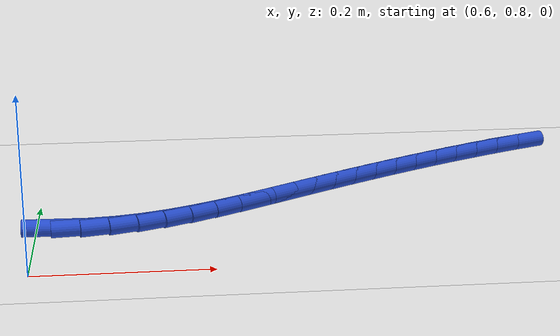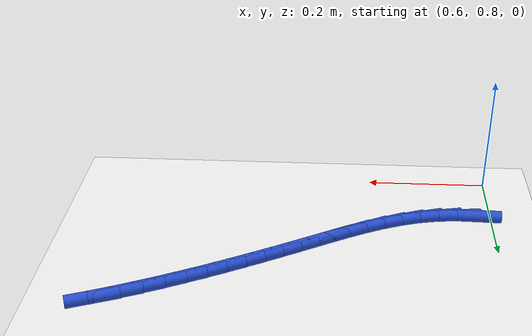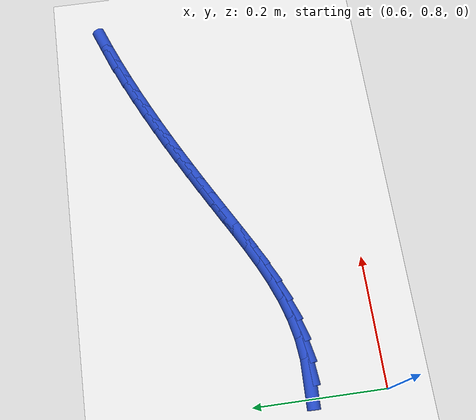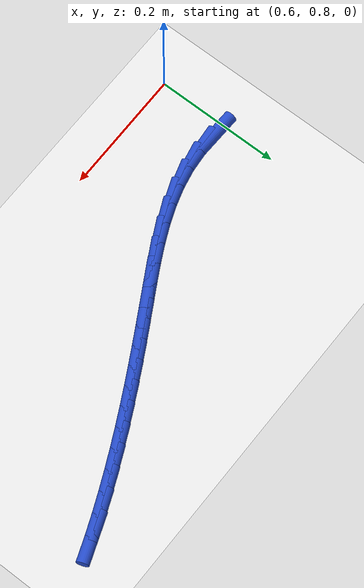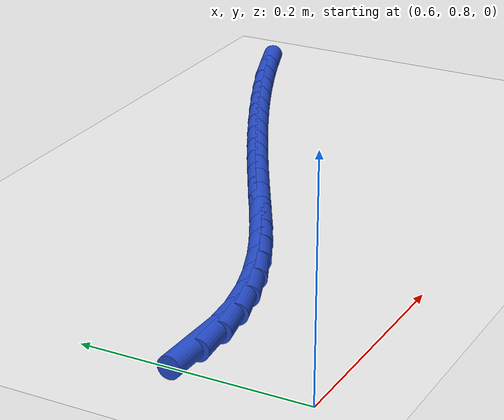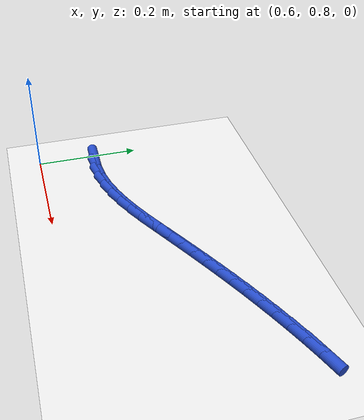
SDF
<sdf version="1.6">
 <world name="default">
  <model name="ground_plane">
   <static>1</static>
   <link name="link">
    <collision name="collision">
     <geometry><plane><normal>0 0 1</normal><size>100 100</size></plane></geometry>
     <surface><friction><ode><mu>100</mu><mu2>50</mu2></ode></friction></surface>
    </collision>
    <visual name="visual">
     <cast_shadows>0</cast_shadows>
     <geometry><plane><normal>0 0 1</normal><size>100 100</size></plane></geometry>
     <material>
      <script><uri>file://media/materials/scripts/gazebo.material</uri><name>Gazebo/WhiteGlow</name></script>
     </material>
    </visual>
   </link>
  </model>
  <model name="line">
   <link name="link_38">
    <pose>0.6246285966978147 0.911528589511543 0.01 0 1.57 -0.02734627377530669</pose>
    <collision name="collision">
     <geometry><cylinder><radius>0.01</radius><length>0.08</length></cylinder></geometry>
    </collision>
    <visual name="visual">
     <material>
      <script><name>Gazebo/Blue</name><uri>file://media/materials/scripts/gazebo.material</uri></script>
     </material>
     <geometry><cylinder><radius>0.01</radius><length>0.08</length></cylinder></geometry>
    </visual>
   </link>
   <link name="link_39">
    <pose>0.6573288925218297 0.9106341352950962 0.01 0 1.57 0.09345466645163591</pose>
    <collision name="collision">
     <geometry><cylinder><radius>0.01</radius><length>0.08</length></cylinder></geometry>
    </collision>
    <visual name="visual">
     <material>
      <script><name>Gazebo/Blue</name><uri>file://media/materials/scripts/gazebo.material</uri></script>
     </material>
     <geometry><cylinder><radius>0.01</radius><length>0.08</length></cylinder></geometry>
    </visual>
   </link>
   <link name="link_40">
    <pose>0.6891732352585526 0.9136188320103223 0.01 0 1.57 0.20142658789239246</pose>
    <collision name="collision">
     <geometry><cylinder><radius>0.01</radius><length>0.08</length></cylinder></geometry>
    </collision>
    <visual name="visual">
     <material>
      <script><name>Gazebo/Blue</name><uri>file://media/materials/scripts/gazebo.material</uri></script>
     </material>
     <geometry><cylinder><radius>0.01</radius><length>0.08</length></cylinder></geometry>
    </visual>
   </link>
   <link name="link_41">
    <pose>0.7202327587477545 0.9199610523577911 0.01 0 1.57 0.2937035245050092</pose>
    <collision name="collision">
     <geometry><cylinder><radius>0.01</radius><length>0.08</length></cylinder></geometry>
    </collision>
    <visual name="visual">
     <material>
      <script><name>Gazebo/Blue</name><uri>file://media/materials/scripts/gazebo.material</uri></script>
     </material>
     <geometry><cylinder><radius>0.01</radius><length>0.08</length></cylinder></geometry>
    </visual>
   </link>
   <link name="link_42">
    <pose>0.7505785968292057 0.9291391690380713 0.01 0 1.57 0.36916790789140325</pose>
    <collision name="collision">
     <geometry><cylinder><radius>0.01</radius><length>0.08</length></cylinder></geometry>
    </collision>
    <visual name="visual">
     <material>
      <script><name>Gazebo/Blue</name><uri>file://media/materials/scripts/gazebo.material</uri></script>
     </material>
     <geometry><cylinder><radius>0.01</radius><length>0.08</length></cylinder></geometry>
    </visual>
   </link>
   <link name="link_43">
    <pose>0.780281883342677 0.9406315547517325 0.01 0 1.57 0.42785775329782727</pose>
    <collision name="collision">
     <geometry><cylinder><radius>0.01</radius><length>0.08</length></cylinder></geometry>
    </collision>
    <visual name="visual">
     <material>
      <script><name>Gazebo/Blue</name><uri>file://media/materials/scripts/gazebo.material</uri></script>
     </material>
     <geometry><cylinder><radius>0.01</radius><length>0.08</length></cylinder></geometry>
    </visual>
   </link>
   <link name="link_44">
    <pose>0.809413752127939 0.9539165821993436 0.01 0 1.57 0.47033790380012375</pose>
    <collision name="collision">
     <geometry><cylinder><radius>0.01</radius><length>0.08</length></cylinder></geometry>
    </collision>
    <visual name="visual">
     <material>
      <script><name>Gazebo/Blue</name><uri>file://media/materials/scripts/gazebo.material</uri></script>
     </material>
     <geometry><cylinder><radius>0.01</radius><length>0.08</length></cylinder></geometry>
    </visual>
   </link>
   <link name="link_45">
    <pose>0.8380453370247627 0.968472624081474 0.01 0 1.57 0.497220447050802</pose>
    <collision name="collision">
     <geometry><cylinder><radius>0.01</radius><length>0.08</length></cylinder></geometry>
    </collision>
    <visual name="visual">
     <material>
      <script><name>Gazebo/Blue</name><uri>file://media/materials/scripts/gazebo.material</uri></script>
     </material>
     <geometry><cylinder><radius>0.01</radius><length>0.08</length></cylinder></geometry>
    </visual>
   </link>
   <link name="link_46">
    <pose>0.8662477718729185 0.983778053098693 0.01 0 1.57 0.5088550428747309</pose>
    <collision name="collision">
     <geometry><cylinder><radius>0.01</radius><length>0.08</length></cylinder></geometry>
    </collision>
    <visual name="visual">
     <material>
      <script><name>Gazebo/Blue</name><uri>file://media/materials/scripts/gazebo.material</uri></script>
     </material>
     <geometry><cylinder><radius>0.01</radius><length>0.08</length></cylinder></geometry>
    </visual>
   </link>
   <link name="link_47">
    <pose>0.8940921905733983 0.9993112425939875 0.01 0 1.57 0.5075804313739977</pose>
    <collision name="collision">
     <geometry><cylinder><radius>0.01</radius><length>0.08</length></cylinder></geometry>
    </collision>
    <visual name="visual">
     <material>
      <script><name>Gazebo/Blue</name><uri>file://media/materials/scripts/gazebo.material</uri></script>
     </material>
     <geometry><cylinder><radius>0.01</radius><length>0.08</length></cylinder></geometry>
    </visual>
   </link>
   <link name="link_48">
    <pose>0.9216585628635784 1.0146432838042176 0.01 0 1.57 0.5023095526102133</pose>
    <collision name="collision">
     <geometry><cylinder><radius>0.01</radius><length>0.08</length></cylinder></geometry>
    </collision>
    <visual name="visual">
     <material>
      <script><name>Gazebo/Blue</name><uri>file://media/materials/scripts/gazebo.material</uri></script>
     </material>
     <geometry><cylinder><radius>0.01</radius><length>0.08</length></cylinder></geometry>
    </visual>
   </link>
   <link name="link_49">
    <pose>0.9490602009674362 1.0296951437448012 0.01 0 1.57 0.49518410823221304</pose>
    <collision name="collision">
     <geometry><cylinder><radius>0.01</radius><length>0.08</length></cylinder></geometry>
    </collision>
    <visual name="visual">
     <material>
      <script><name>Gazebo/Blue</name><uri>file://media/materials/scripts/gazebo.material</uri></script>
     </material>
     <geometry><cylinder><radius>0.01</radius><length>0.08</length></cylinder></geometry>
    </visual>
   </link>
   <link name="link_50">
    <pose>0.9764182805303183 1.0444703033931841 0.01 0 1.57 0.4862487569106676</pose>
    <collision name="collision">
     <geometry><cylinder><radius>0.01</radius><length>0.08</length></cylinder></geometry>
    </collision>
    <visual name="visual">
     <material>
      <script><name>Gazebo/Blue</name><uri>file://media/materials/scripts/gazebo.material</uri></script>
     </material>
     <geometry><cylinder><radius>0.01</radius><length>0.08</length></cylinder></geometry>
    </visual>
   </link>
   <link name="link_51">
    <pose>1.0038539771975703 1.0589722437268116 0.01 0 1.57 0.47558805553557737</pose>
    <collision name="collision">
     <geometry><cylinder><radius>0.01</radius><length>0.08</length></cylinder></geometry>
    </collision>
    <visual name="visual">
     <material>
      <script><name>Gazebo/Blue</name><uri>file://media/materials/scripts/gazebo.material</uri></script>
     </material>
     <geometry><cylinder><radius>0.01</radius><length>0.08</length></cylinder></geometry>
    </visual>
   </link>
   <link name="link_52">
    <pose>1.0314884666145394 1.0732044457231305 0.01 0 1.57 0.463324623906435</pose>
    <collision name="collision">
     <geometry><cylinder><radius>0.01</radius><length>0.08</length></cylinder></geometry>
    </collision>
    <visual name="visual">
     <material>
      <script><name>Gazebo/Blue</name><uri>file://media/materials/scripts/gazebo.material</uri></script>
     </material>
     <geometry><cylinder><radius>0.01</radius><length>0.08</length></cylinder></geometry>
    </visual>
   </link>
   <link name="link_53">
    <pose>1.0594429244265706 1.087170390359586 0.01 0 1.57 0.44961527726774564</pose>
    <collision name="collision">
     <geometry><cylinder><radius>0.01</radius><length>0.08</length></cylinder></geometry>
    </collision>
    <visual name="visual">
     <material>
      <script><name>Gazebo/Blue</name><uri>file://media/materials/scripts/gazebo.material</uri></script>
     </material>
     <geometry><cylinder><radius>0.01</radius><length>0.08</length></cylinder></geometry>
    </visual>
   </link>
   <link name="link_54">
    <pose>1.0878385262790107 1.1008735586136238 0.01 0 1.57 0.4346453161860608</pose>
    <collision name="collision">
     <geometry><cylinder><radius>0.01</radius><length>0.08</length></cylinder></geometry>
    </collision>
    <visual name="visual">
     <material>
      <script><name>Gazebo/Blue</name><uri>file://media/materials/scripts/gazebo.material</uri></script>
     </material>
     <geometry><cylinder><radius>0.01</radius><length>0.08</length></cylinder></geometry>
    </visual>
   </link>
   <link name="link_55">
    <pose>1.1167964478172054 1.1143174314626905 0.01 0 1.57 0.4186213511448961</pose>
    <collision name="collision">
     <geometry><cylinder><radius>0.01</radius><length>0.08</length></cylinder></geometry>
    </collision>
    <visual name="visual">
     <material>
      <script><name>Gazebo/Blue</name><uri>file://media/materials/scripts/gazebo.material</uri></script>
     </material>
     <geometry><cylinder><radius>0.01</radius><length>0.08</length></cylinder></geometry>
    </visual>
   </link>
   <link name="link_56">
    <pose>1.1464378646865014 1.1275054898842312 0.01 0 1.57 0.40146732995015416</pose>
    <collision name="collision">
     <geometry><cylinder><radius>0.01</radius><length>0.08</length></cylinder></geometry>
    </collision>
    <visual name="visual">
     <material>
      <script><name>Gazebo/Blue</name><uri>file://media/materials/scripts/gazebo.material</uri></script>
     </material>
     <geometry><cylinder><radius>0.01</radius><length>0.08</length></cylinder></geometry>
    </visual>
   </link>
   <link name="link_57">
    <pose>1.1768653168603378 1.1404226710005245 0.01 0 1.57 0.38053230119687814</pose>
    <collision name="collision">
     <geometry><cylinder><radius>0.01</radius><length>0.08</length></cylinder></geometry>
    </collision>
    <visual name="visual">
     <material>
      <script><name>Gazebo/Blue</name><uri>file://media/materials/scripts/gazebo.material</uri></script>
     </material>
     <geometry><cylinder><radius>0.01</radius><length>0.08</length></cylinder></geometry>
    </visual>
   </link>
   <link name="link_58">
    <pose>1.2080067548952422 1.1528801827075925 0.01 0 1.57 0.35408981260244043</pose>
    <collision name="collision">
     <geometry><cylinder><radius>0.01</radius><length>0.08</length></cylinder></geometry>
    </collision>
    <visual name="visual">
     <material>
      <script><name>Gazebo/Blue</name><uri>file://media/materials/scripts/gazebo.material</uri></script>
     </material>
     <geometry><cylinder><radius>0.01</radius><length>0.08</length></cylinder></geometry>
    </visual>
   </link>
  </model>
 </world>
</sdf>
